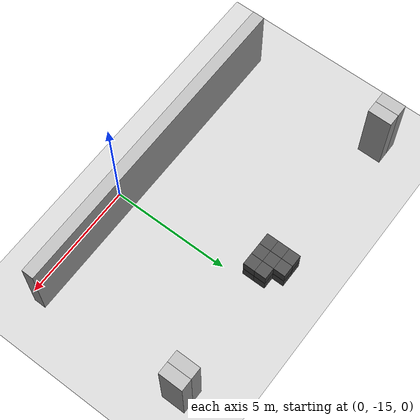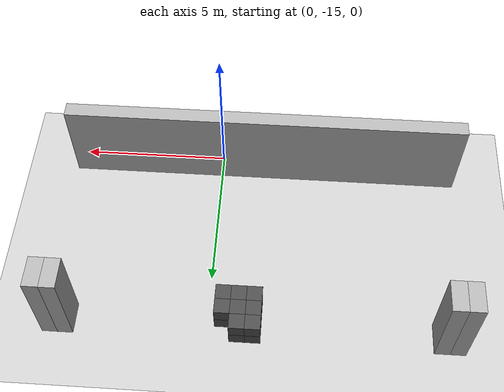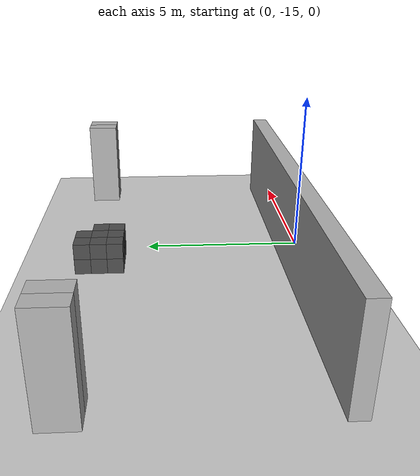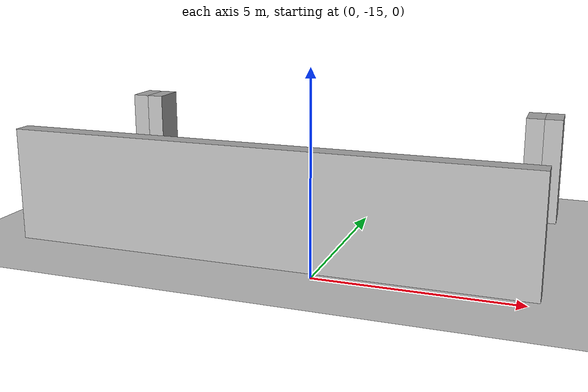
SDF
<sdf version="1.6">
 <world name="default">
  <include><uri>model://ground_plane</uri></include>
  <model name="wall_1">
   <pose frame="sim_world">-8.0 -8.25 1.5 0 0 0</pose>
   <static>True</static>
   <link name="wall_1_link">
    <inertial>
     <mass>100</mass>
     <inertia>
      <ixx>0.166667</ixx>
      <ixy>0</ixy>
      <ixz>0</ixz>
      <iyy>0.166667</iyy>
      <iyz>0</iyz>
      <izz>0.166667</izz>
     </inertia>
    </inertial>
    <collision name="wall_1_collision">
     <geometry><box><size>0.5 1.0 3.0</size></box></geometry>
     <max_contacts>100</max_contacts>
    </collision>
    <visual name="wall_1_visual">
     <geometry><box><size>0.5 1.0 3.0</size></box></geometry>
     <material><ambient>0.7 0.7 0.7 1</ambient><diffuse>0.7 0.7 0.7 1</diffuse></material>
    </visual>
   </link>
  </model>
  <model name="wall_4">
   <pose frame="sim_world">-7.5 -8.25 1.5 0 0 0</pose>
   <static>True</static>
   <link name="wall_4_link">
    <inertial>
     <mass>100</mass>
     <inertia>
      <ixx>0.166667</ixx>
      <ixy>0</ixy>
      <ixz>0</ixz>
      <iyy>0.166667</iyy>
      <iyz>0</iyz>
      <izz>0.166667</izz>
     </inertia>
    </inertial>
    <collision name="wall_4_collision">
     <geometry><box><size>0.5 1.0 3.0</size></box></geometry>
     <max_contacts>100</max_contacts>
    </collision>
    <visual name="wall_4_visual">
     <geometry><box><size>0.5 1.0 3.0</size></box></geometry>
     <material><ambient>0.7 0.7 0.7 1</ambient><diffuse>0.7 0.7 0.7 1</diffuse></material>
    </visual>
   </link>
  </model>
  <model name="wall_7">
   <pose frame="sim_world">4.5 -8.25 1.5 0 0 0</pose>
   <static>True</static>
   <link name="wall_7_link">
    <inertial>
     <mass>100</mass>
     <inertia>
      <ixx>0.166667</ixx>
      <ixy>0</ixy>
      <ixz>0</ixz>
      <iyy>0.166667</iyy>
      <iyz>0</iyz>
      <izz>0.166667</izz>
     </inertia>
    </inertial>
    <collision name="wall_7_collision">
     <geometry><box><size>0.5 1.0 3.0</size></box></geometry>
     <max_contacts>100</max_contacts>
    </collision>
    <visual name="wall_7_visual">
     <geometry><box><size>0.5 1.0 3.0</size></box></geometry>
     <material><ambient>0.7 0.7 0.7 1</ambient><diffuse>0.7 0.7 0.7 1</diffuse></material>
    </visual>
   </link>
  </model>
  <model name="wall_10">
   <pose frame="sim_world">5.0 -8.25 1.5 0 0 0</pose>
   <static>True</static>
   <link name="wall_10_link">
    <inertial>
     <mass>100</mass>
     <inertia>
      <ixx>0.166667</ixx>
      <ixy>0</ixy>
      <ixz>0</ixz>
      <iyy>0.166667</iyy>
      <iyz>0</iyz>
      <izz>0.166667</izz>
     </inertia>
    </inertial>
    <collision name="wall_10_collision">
     <geometry><box><size>0.5 1.0 3.0</size></box></geometry>
     <max_contacts>100</max_contacts>
    </collision>
    <visual name="wall_10_visual">
     <geometry><box><size>0.5 1.0 3.0</size></box></geometry>
     <material><ambient>0.7 0.7 0.7 1</ambient><diffuse>0.7 0.7 0.7 1</diffuse></material>
    </visual>
   </link>
  </model>
  <model name="wall_14">
   <pose frame="sim_world">-1.5 -14.5 1.5 0 0 0</pose>
   <static>True</static>
   <link name="wall_14_link">
    <inertial>
     <mass>100</mass>
     <inertia>
      <ixx>0.166667</ixx>
      <ixy>0</ixy>
      <ixz>0</ixz>
      <iyy>0.166667</iyy>
      <iyz>0</iyz>
      <izz>0.166667</izz>
     </inertia>
    </inertial>
    <collision name="wall_14_collision">
     <geometry><box><size>13.5 0.5 3.0</size></box></geometry>
     <max_contacts>100</max_contacts>
    </collision>
    <visual name="wall_14_visual">
     <geometry><box><size>13.5 0.5 3.0</size></box></geometry>
     <material><ambient>0.7 0.7 0.7 1</ambient><diffuse>0.7 0.7 0.7 1</diffuse></material>
    </visual>
   </link>
  </model>
  <model name="box_4">
   <pose frame="sim_world">-1.5 -9.0 0.25 0 -0 0</pose>
   <static>True</static>
   <link name="box_4_link">
    <inertial>
     <mass>100</mass>
     <inertia>
      <ixx>0.166667</ixx>
      <ixy>0</ixy>
      <ixz>0</ixz>
      <iyy>0.166667</iyy>
      <iyz>0</iyz>
      <izz>0.166667</izz>
     </inertia>
    </inertial>
    <collision name="box_4_collision">
     <geometry><box><size>0.5 0.5 0.5</size></box></geometry>
     <max_contacts>100</max_contacts>
    </collision>
    <visual name="box_4_visual">
     <geometry><box><size>0.5 0.5 0.5</size></box></geometry>
     <material><ambient>0.3 0.3 0.3 1</ambient><diffuse>0.3 0.3 0.3 1</diffuse></material>
    </visual>
   </link>
  </model>
  <model name="box_5">
   <pose frame="sim_world">-1.5 -9.0 0.75 0 -0 0</pose>
   <static>True</static>
   <link name="box_5_link">
    <inertial>
     <mass>100</mass>
     <inertia>
      <ixx>0.166667</ixx>
      <ixy>0</ixy>
      <ixz>0</ixz>
      <iyy>0.166667</iyy>
      <iyz>0</iyz>
      <izz>0.166667</izz>
     </inertia>
    </inertial>
    <collision name="box_5_collision">
     <geometry><box><size>0.5 0.5 0.5</size></box></geometry>
     <max_contacts>100</max_contacts>
    </collision>
    <visual name="box_5_visual">
     <geometry><box><size>0.5 0.5 0.5</size></box></geometry>
     <material><ambient>0.3 0.3 0.3 1</ambient><diffuse>0.3 0.3 0.3 1</diffuse></material>
    </visual>
   </link>
  </model>
  <model name="box_6">
   <pose frame="sim_world">-1.5 -8.5 0.25 0 -0 0</pose>
   <static>True</static>
   <link name="box_6_link">
    <inertial>
     <mass>100</mass>
     <inertia>
      <ixx>0.166667</ixx>
      <ixy>0</ixy>
      <ixz>0</ixz>
      <iyy>0.166667</iyy>
      <iyz>0</iyz>
      <izz>0.166667</izz>
     </inertia>
    </inertial>
    <collision name="box_6_collision">
     <geometry><box><size>0.5 0.5 0.5</size></box></geometry>
     <max_contacts>100</max_contacts>
    </collision>
    <visual name="box_6_visual">
     <geometry><box><size>0.5 0.5 0.5</size></box></geometry>
     <material><ambient>0.3 0.3 0.3 1</ambient><diffuse>0.3 0.3 0.3 1</diffuse></material>
    </visual>
   </link>
  </model>
  <model name="box_7">
   <pose frame="sim_world">-1.5 -8.5 0.75 0 -0 0</pose>
   <static>True</static>
   <link name="box_7_link">
    <inertial>
     <mass>100</mass>
     <inertia>
      <ixx>0.166667</ixx>
      <ixy>0</ixy>
      <ixz>0</ixz>
      <iyy>0.166667</iyy>
      <iyz>0</iyz>
      <izz>0.166667</izz>
     </inertia>
    </inertial>
    <collision name="box_7_collision">
     <geometry><box><size>0.5 0.5 0.5</size></box></geometry>
     <max_contacts>100</max_contacts>
    </collision>
    <visual name="box_7_visual">
     <geometry><box><size>0.5 0.5 0.5</size></box></geometry>
     <material><ambient>0.3 0.3 0.3 1</ambient><diffuse>0.3 0.3 0.3 1</diffuse></material>
    </visual>
   </link>
  </model>
  <model name="box_8">
   <pose frame="sim_world">-1.5 -8.0 0.25 0 -0 0</pose>
   <static>True</static>
   <link name="box_8_link">
    <inertial>
     <mass>100</mass>
     <inertia>
      <ixx>0.166667</ixx>
      <ixy>0</ixy>
      <ixz>0</ixz>
      <iyy>0.166667</iyy>
      <iyz>0</iyz>
      <izz>0.166667</izz>
     </inertia>
    </inertial>
    <collision name="box_8_collision">
     <geometry><box><size>0.5 0.5 0.5</size></box></geometry>
     <max_contacts>100</max_contacts>
    </collision>
    <visual name="box_8_visual">
     <geometry><box><size>0.5 0.5 0.5</size></box></geometry>
     <material><ambient>0.3 0.3 0.3 1</ambient><diffuse>0.3 0.3 0.3 1</diffuse></material>
    </visual>
   </link>
  </model>
  <model name="box_9">
   <pose frame="sim_world">-1.5 -8.0 0.75 0 -0 0</pose>
   <static>True</static>
   <link name="box_9_link">
    <inertial>
     <mass>100</mass>
     <inertia>
      <ixx>0.166667</ixx>
      <ixy>0</ixy>
      <ixz>0</ixz>
      <iyy>0.166667</iyy>
      <iyz>0</iyz>
      <izz>0.166667</izz>
     </inertia>
    </inertial>
    <collision name="box_9_collision">
     <geometry><box><size>0.5 0.5 0.5</size></box></geometry>
     <max_contacts>100</max_contacts>
    </collision>
    <visual name="box_9_visual">
     <geometry><box><size>0.5 0.5 0.5</size></box></geometry>
     <material><ambient>0.3 0.3 0.3 1</ambient><diffuse>0.3 0.3 0.3 1</diffuse></material>
    </visual>
   </link>
  </model>
  <model name="box_10">
   <pose frame="sim_world">-1.0 -9.0 0.25 0 -0 0</pose>
   <static>True</static>
   <link name="box_10_link">
    <inertial>
     <mass>100</mass>
     <inertia>
      <ixx>0.166667</ixx>
      <ixy>0</ixy>
      <ixz>0</ixz>
      <iyy>0.166667</iyy>
      <iyz>0</iyz>
      <izz>0.166667</izz>
     </inertia>
    </inertial>
    <collision name="box_10_collision">
     <geometry><box><size>0.5 0.5 0.5</size></box></geometry>
     <max_contacts>100</max_contacts>
    </collision>
    <visual name="box_10_visual">
     <geometry><box><size>0.5 0.5 0.5</size></box></geometry>
     <material><ambient>0.3 0.3 0.3 1</ambient><diffuse>0.3 0.3 0.3 1</diffuse></material>
    </visual>
   </link>
  </model>
  <model name="box_11">
   <pose frame="sim_world">-1.0 -9.0 0.75 0 -0 0</pose>
   <static>True</static>
   <link name="box_11_link">
    <inertial>
     <mass>100</mass>
     <inertia>
      <ixx>0.166667</ixx>
      <ixy>0</ixy>
      <ixz>0</ixz>
      <iyy>0.166667</iyy>
      <iyz>0</iyz>
      <izz>0.166667</izz>
     </inertia>
    </inertial>
    <collision name="box_11_collision">
     <geometry><box><size>0.5 0.5 0.5</size></box></geometry>
     <max_contacts>100</max_contacts>
    </collision>
    <visual name="box_11_visual">
     <geometry><box><size>0.5 0.5 0.5</size></box></geometry>
     <material><ambient>0.3 0.3 0.3 1</ambient><diffuse>0.3 0.3 0.3 1</diffuse></material>
    </visual>
   </link>
  </model>
  <model name="box_12">
   <pose frame="sim_world">-1.0 -8.5 0.25 0 -0 0</pose>
   <static>True</static>
   <link name="box_12_link">
    <inertial>
     <mass>100</mass>
     <inertia>
      <ixx>0.166667</ixx>
      <ixy>0</ixy>
      <ixz>0</ixz>
      <iyy>0.166667</iyy>
      <iyz>0</iyz>
      <izz>0.166667</izz>
     </inertia>
    </inertial>
    <collision name="box_12_collision">
     <geometry><box><size>0.5 0.5 0.5</size></box></geometry>
     <max_contacts>100</max_contacts>
    </collision>
    <visual name="box_12_visual">
     <geometry><box><size>0.5 0.5 0.5</size></box></geometry>
     <material><ambient>0.3 0.3 0.3 1</ambient><diffuse>0.3 0.3 0.3 1</diffuse></material>
    </visual>
   </link>
  </model>
  <model name="box_13">
   <pose frame="sim_world">-1.0 -8.5 0.75 0 -0 0</pose>
   <static>True</static>
   <link name="box_13_link">
    <inertial>
     <mass>100</mass>
     <inertia>
      <ixx>0.166667</ixx>
      <ixy>0</ixy>
      <ixz>0</ixz>
      <iyy>0.166667</iyy>
      <iyz>0</iyz>
      <izz>0.166667</izz>
     </inertia>
    </inertial>
    <collision name="box_13_collision">
     <geometry><box><size>0.5 0.5 0.5</size></box></geometry>
     <max_contacts>100</max_contacts>
    </collision>
    <visual name="box_13_visual">
     <geometry><box><size>0.5 0.5 0.5</size></box></geometry>
     <material><ambient>0.3 0.3 0.3 1</ambient><diffuse>0.3 0.3 0.3 1</diffuse></material>
    </visual>
   </link>
  </model>
  <model name="box_14">
   <pose frame="sim_world">-1.0 -8.0 0.25 0 -0 0</pose>
   <static>True</static>
   <link name="box_14_link">
    <inertial>
     <mass>100</mass>
     <inertia>
      <ixx>0.166667</ixx>
      <ixy>0</ixy>
      <ixz>0</ixz>
      <iyy>0.166667</iyy>
      <iyz>0</iyz>
      <izz>0.166667</izz>
     </inertia>
    </inertial>
    <collision name="box_14_collision">
     <geometry><box><size>0.5 0.5 0.5</size></box></geometry>
     <max_contacts>100</max_contacts>
    </collision>
    <visual name="box_14_visual">
     <geometry><box><size>0.5 0.5 0.5</size></box></geometry>
     <material><ambient>0.3 0.3 0.3 1</ambient><diffuse>0.3 0.3 0.3 1</diffuse></material>
    </visual>
   </link>
  </model>
  <model name="box_15">
   <pose frame="sim_world">-1.0 -8.0 0.75 0 -0 0</pose>
   <static>True</static>
   <link name="box_15_link">
    <inertial>
     <mass>100</mass>
     <inertia>
      <ixx>0.166667</ixx>
      <ixy>0</ixy>
      <ixz>0</ixz>
      <iyy>0.166667</iyy>
      <iyz>0</iyz>
      <izz>0.166667</izz>
     </inertia>
    </inertial>
    <collision name="box_15_collision">
     <geometry><box><size>0.5 0.5 0.5</size></box></geometry>
     <max_contacts>100</max_contacts>
    </collision>
    <visual name="box_15_visual">
     <geometry><box><size>0.5 0.5 0.5</size></box></geometry>
     <material><ambient>0.3 0.3 0.3 1</ambient><diffuse>0.3 0.3 0.3 1</diffuse></material>
    </visual>
   </link>
  </model>
  <model name="box_16">
   <pose frame="sim_world">-0.5 -9.0 0.25 0 -0 0</pose>
   <static>True</static>
   <link name="box_16_link">
    <inertial>
     <mass>100</mass>
     <inertia>
      <ixx>0.166667</ixx>
      <ixy>0</ixy>
      <ixz>0</ixz>
      <iyy>0.166667</iyy>
      <iyz>0</iyz>
      <izz>0.166667</izz>
     </inertia>
    </inertial>
    <collision name="box_16_collision">
     <geometry><box><size>0.5 0.5 0.5</size></box></geometry>
     <max_contacts>100</max_contacts>
    </collision>
    <visual name="box_16_visual">
     <geometry><box><size>0.5 0.5 0.5</size></box></geometry>
     <material><ambient>0.3 0.3 0.3 1</ambient><diffuse>0.3 0.3 0.3 1</diffuse></material>
    </visual>
   </link>
  </model>
  <model name="box_17">
   <pose frame="sim_world">-0.5 -9.0 0.75 0 -0 0</pose>
   <static>True</static>
   <link name="box_17_link">
    <inertial>
     <mass>100</mass>
     <inertia>
      <ixx>0.166667</ixx>
      <ixy>0</ixy>
      <ixz>0</ixz>
      <iyy>0.166667</iyy>
      <iyz>0</iyz>
      <izz>0.166667</izz>
     </inertia>
    </inertial>
    <collision name="box_17_collision">
     <geometry><box><size>0.5 0.5 0.5</size></box></geometry>
     <max_contacts>100</max_contacts>
    </collision>
    <visual name="box_17_visual">
     <geometry><box><size>0.5 0.5 0.5</size></box></geometry>
     <material><ambient>0.3 0.3 0.3 1</ambient><diffuse>0.3 0.3 0.3 1</diffuse></material>
    </visual>
   </link>
  </model>
  <model name="box_18">
   <pose frame="sim_world">-0.5 -8.5 0.25 0 -0 0</pose>
   <static>True</static>
   <link name="box_18_link">
    <inertial>
     <mass>100</mass>
     <inertia>
      <ixx>0.166667</ixx>
      <ixy>0</ixy>
      <ixz>0</ixz>
      <iyy>0.166667</iyy>
      <iyz>0</iyz>
      <izz>0.166667</izz>
     </inertia>
    </inertial>
    <collision name="box_18_collision">
     <geometry><box><size>0.5 0.5 0.5</size></box></geometry>
     <max_contacts>100</max_contacts>
    </collision>
    <visual name="box_18_visual">
     <geometry><box><size>0.5 0.5 0.5</size></box></geometry>
     <material><ambient>0.3 0.3 0.3 1</ambient><diffuse>0.3 0.3 0.3 1</diffuse></material>
    </visual>
   </link>
  </model>
  <model name="box_19">
   <pose frame="sim_world">-0.5 -8.5 0.75 0 -0 0</pose>
   <static>True</static>
   <link name="box_19_link">
    <inertial>
     <mass>100</mass>
     <inertia>
      <ixx>0.166667</ixx>
      <ixy>0</ixy>
      <ixz>0</ixz>
      <iyy>0.166667</iyy>
      <iyz>0</iyz>
      <izz>0.166667</izz>
     </inertia>
    </inertial>
    <collision name="box_19_collision">
     <geometry><box><size>0.5 0.5 0.5</size></box></geometry>
     <max_contacts>100</max_contacts>
    </collision>
    <visual name="box_19_visual">
     <geometry><box><size>0.5 0.5 0.5</size></box></geometry>
     <material><ambient>0.3 0.3 0.3 1</ambient><diffuse>0.3 0.3 0.3 1</diffuse></material>
    </visual>
   </link>
  </model>
  <model name="ground_plane"><link name="ground_plane"/></model>
 </world>
</sdf>
